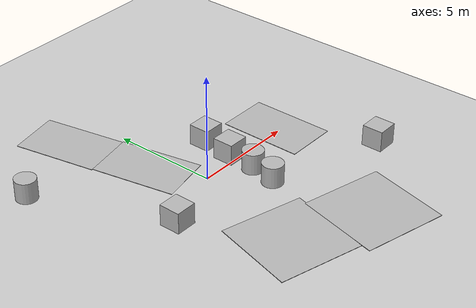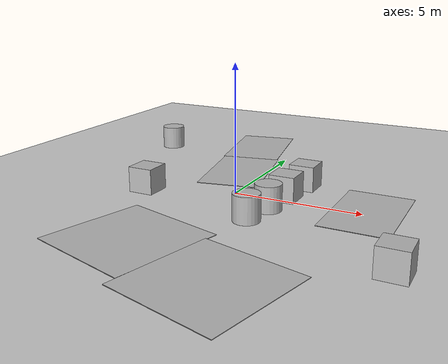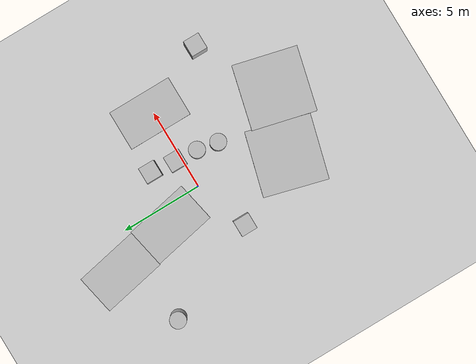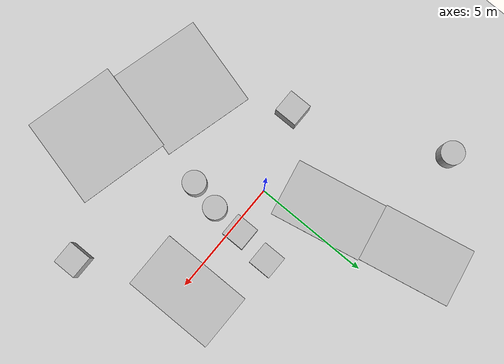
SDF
<?xml version="1.0" ?>
<sdf version="1.6">
  <world name="default">

    <include>
      <uri>model://sun</uri>
    </include>

    <include>
      <uri>model://asphalt_plane</uri>
    </include>

    <include>
      <uri>model://blue_tape_line</uri>
      <pose>5.1076 0.21125 0.05 0 0 0</pose>
      <name>line1</name>
    </include>

    <include>
      <uri>model://blue_tape_line</uri>
      <pose>-1.0799 2.5432 0.05 0 0 -2.943149</pose>
      <name>line2</name>
    </include>

    <include>
      <uri>model://blue_tape_line</uri>
      <pose>-1.92 6.4531 0.05 0 0 -2.943149</pose>
      <name>line3</name>
    </include>

    <include>
      <uri>model://blue_tape_corner</uri>
      <pose>2.620078 -6.7735 0.05 0 0 -0.24227</pose>
      <name>corner1</name>
    </include>

    <include>
      <uri>model://blue_tape_corner</uri>
      <pose>-1.118 -5.3559 0.05 0 0 -1.8344</pose>
      <name>corner2</name>
    </include>

    <model name='box1'>
      <static>1</static>
      <pose>7.01559 -4.05281 0.5 0 0 0</pose>
      <link name='link'>
        <collision name='collision'>
          <geometry>
            <box>
              <size>1 1 1</size>
            </box>
          </geometry>
          <max_contacts>10</max_contacts>
          <surface>
            <contact>
              <ode/>
            </contact>
            <bounce/>
            <friction>
              <torsional>
                <ode/>
              </torsional>
              <ode/>
            </friction>
          </surface>
        </collision>
        <visual name='visual'>
          <cast_shadows>0</cast_shadows>
          <geometry>
            <box>
              <size>1 1 1</size>
            </box>
          </geometry>
        </visual>
        <self_collide>0</self_collide>
        <enable_wind>0</enable_wind>
        <kinematic>0</kinematic>
      </link>
    </model>

    <model name='box2'>
      <static>1</static>
      <pose>1.9372 0.355 0.5 0 0 0</pose>
      <link name='link'>
        <collision name='collision'>
          <geometry>
            <box>
              <size>1 1 1</size>
            </box>
          </geometry>
          <max_contacts>10</max_contacts>
          <surface>
            <contact>
              <ode/>
            </contact>
            <bounce/>
            <friction>
              <torsional>
                <ode/>
              </torsional>
              <ode/>
            </friction>
          </surface>
        </collision>
        <visual name='visual'>
          <cast_shadows>0</cast_shadows>
          <geometry>
            <box>
              <size>1 1 1</size>
            </box>
          </geometry>
        </visual>
        <self_collide>0</self_collide>
        <enable_wind>0</enable_wind>
        <kinematic>0</kinematic>
      </link>
    </model>

    <model name='box3'>
      <static>1</static>
      <pose>2.125 1.8972 0.5 0 0 0</pose>
      <link name='link'>
        <collision name='collision'>
          <geometry>
            <box>
              <size>1 1 1</size>
            </box>
          </geometry>
          <max_contacts>10</max_contacts>
          <surface>
            <contact>
              <ode/>
            </contact>
            <bounce/>
            <friction>
              <torsional>
                <ode/>
              </torsional>
              <ode/>
            </friction>
          </surface>
        </collision>
        <visual name='visual'>
          <cast_shadows>0</cast_shadows>
          <geometry>
            <box>
              <size>1 1 1</size>
            </box>
          </geometry>
        </visual>
        <self_collide>0</self_collide>
        <enable_wind>0</enable_wind>
        <kinematic>0</kinematic>
      </link>
    </model>

    <model name='box4'>
      <static>1</static>
      <pose>-3.257 -1.175 0.5 0 0 0</pose>
      <link name='link'>
        <collision name='collision'>
          <geometry>
            <box>
              <size>1 1 1</size>
            </box>
          </geometry>
          <max_contacts>10</max_contacts>
          <surface>
            <contact>
              <ode/>
            </contact>
            <bounce/>
            <friction>
              <torsional>
                <ode/>
              </torsional>
              <ode/>
            </friction>
          </surface>
        </collision>
        <visual name='visual'>
          <cast_shadows>0</cast_shadows>
          <geometry>
            <box>
              <size>1 1 1</size>
            </box>
          </geometry>
        </visual>
        <self_collide>0</self_collide>
        <enable_wind>0</enable_wind>
        <kinematic>0</kinematic>
      </link>
    </model>

    <model name='cyl1'>
      <static>1</static>
      <pose>1.5892 -2.305 0.5 0 0 0</pose>
      <link name='link'>
        <collision name='collision'>
          <geometry>
            <cylinder>
              <radius>0.5</radius>
              <length>1</length>
            </cylinder>
          </geometry>
          <max_contacts>10</max_contacts>
          <surface>
            <contact>
              <ode/>
            </contact>
            <bounce/>
            <friction>
              <torsional>
                <ode/>
              </torsional>
              <ode/>
            </friction>
          </surface>
        </collision>
        <visual name='visual'>
          <cast_shadows>0</cast_shadows>
          <geometry>
            <cylinder>
              <radius>0.5</radius>
              <length>1</length>
            </cylinder>
          </geometry>
        </visual>
        <self_collide>0</self_collide>
        <enable_wind>0</enable_wind>
        <kinematic>0</kinematic>
      </link>
    </model>

    <model name='cyl2'>
      <static>1</static>
      <pose>1.835 -1.0329 0.5 0 0 0</pose>
      <link name='link'>
        <collision name='collision'>
          <geometry>
            <cylinder>
              <radius>0.5</radius>
              <length>1</length>
            </cylinder>
          </geometry>
          <max_contacts>10</max_contacts>
          <surface>
            <contact>
              <ode/>
            </contact>
            <bounce/>
            <friction>
              <torsional>
                <ode/>
              </torsional>
              <ode/>
            </friction>
          </surface>
        </collision>
        <visual name='visual'>
          <cast_shadows>0</cast_shadows>
          <geometry>
            <cylinder>
              <radius>0.5</radius>
              <length>1</length>
            </cylinder>
          </geometry>
        </visual>
        <self_collide>0</self_collide>
        <enable_wind>0</enable_wind>
        <kinematic>0</kinematic>
      </link>
    </model>

    <model name='cyl3'>
      <static>1</static>
      <pose>-5.928 4.9135 0.5 0 0 0</pose>
      <link name='link'>
        <collision name='collision'>
          <geometry>
            <cylinder>
              <radius>0.5</radius>
              <length>1</length>
            </cylinder>
          </geometry>
          <max_contacts>10</max_contacts>
          <surface>
            <contact>
              <ode/>
            </contact>
            <bounce/>
            <friction>
              <torsional>
                <ode/>
              </torsional>
              <ode/>
            </friction>
          </surface>
        </collision>
        <visual name='visual'>
          <cast_shadows>0</cast_shadows>
          <geometry>
            <cylinder>
              <radius>0.5</radius>
              <length>1</length>
            </cylinder>
          </geometry>
        </visual>
        <self_collide>0</self_collide>
        <enable_wind>0</enable_wind>
        <kinematic>0</kinematic>
      </link>
    </model>

  </world>
</sdf>

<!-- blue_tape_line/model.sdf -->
<sdf version="1.5">
  <model name="blue_tape_line">
    <static>true</static>
    <link name="link">
      <collision name="collision">
        <geometry>
          <box>
            <size>2.5 4 0.02</size>
          </box>
        </geometry>
      </collision>
      <visual name="visual">
        <cast_shadows>false</cast_shadows>
        <geometry>
          <box>
            <size>2.5 4 0.02</size>
          </box>
        </geometry>
        <material>
          <script>
            <uri>model://blue_tape_line/materials/scripts</uri>
            <uri>model://blue_tape_line/materials/textures</uri>
            <name>vrc/tape_line</name>
          </script>
        </material>
      </visual>
    </link>
  </model>
</sdf>

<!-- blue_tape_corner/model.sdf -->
<sdf version="1.5">
  <model name="blue_tape_corner">
    <static>true</static>
    <link name="link">
      <collision name="collision">
        <geometry>
          <box>
            <size>4 4 .02</size>
          </box>
        </geometry>
      </collision>
      <visual name="visual">
        <cast_shadows>false</cast_shadows>
        <geometry>
          <box>
            <size>4 4 .02</size>
          </box>
        </geometry>
        <material>
          <script>
            <uri>model://blue_tape_corner/materials/scripts</uri>
            <uri>model://blue_tape_corner/materials/textures</uri>
            <name>vrc/tape_corner</name>
          </script>
        </material>
      </visual>
    </link>
  </model>
</sdf>
